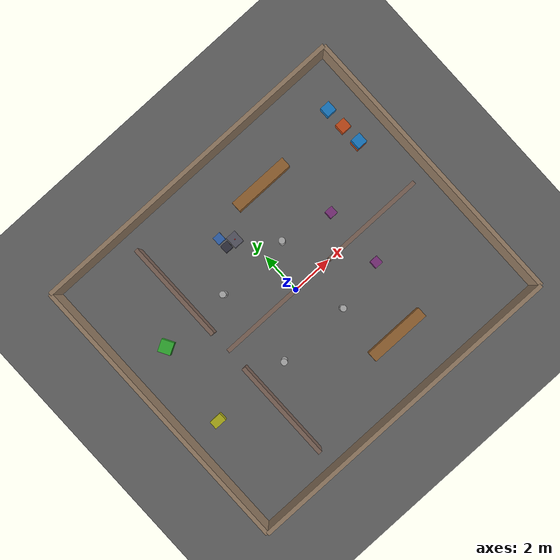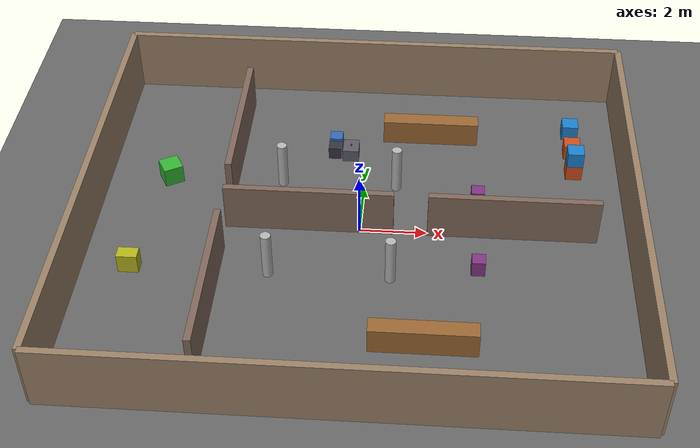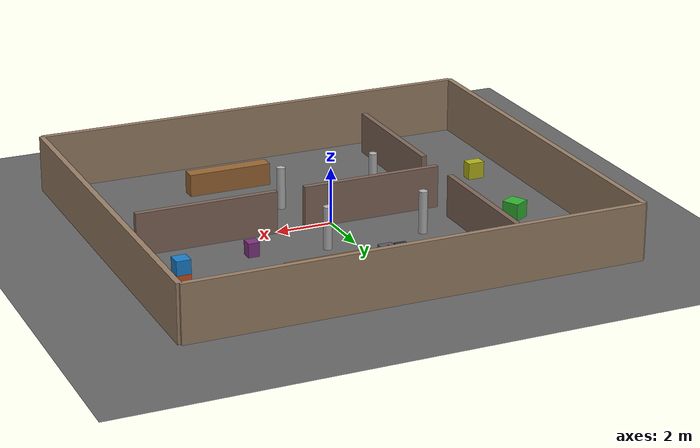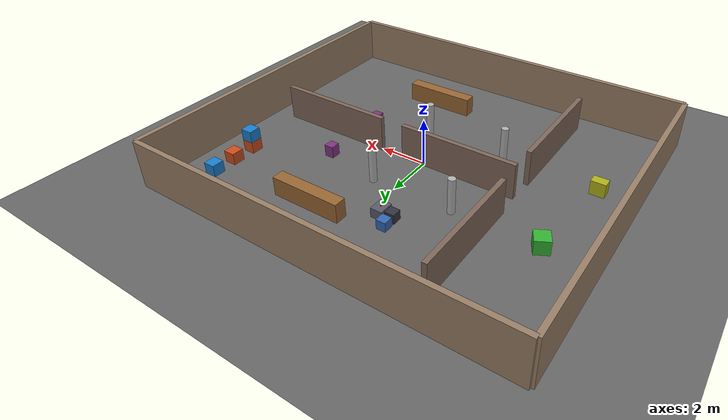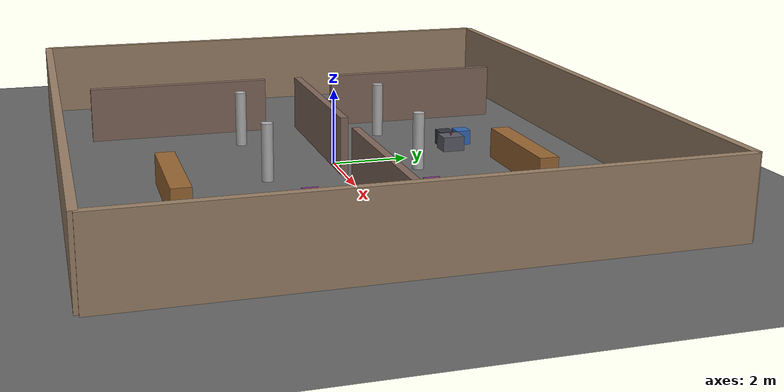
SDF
<?xml version="1.0" ?>
<sdf version="1.9">
  <world name="mecanum_warehouse">

    <physics name="1ms" type="ignored">
      <max_step_size>0.001</max_step_size>
      <real_time_factor>1.0</real_time_factor>
    </physics>

    <plugin filename="gz-sim-physics-system"
            name="gz::sim::systems::Physics"/>
    <plugin filename="gz-sim-sensors-system"
            name="gz::sim::systems::Sensors">
      <render_engine>ogre2</render_engine>
    </plugin>
    <plugin filename="gz-sim-scene-broadcaster-system"
            name="gz::sim::systems::SceneBroadcaster"/>
    <plugin filename="gz-sim-user-commands-system"
            name="gz::sim::systems::UserCommands"/>
    <plugin filename="gz-sim-imu-system"
            name="gz::sim::systems::Imu"/>

    <light name="sun" type="directional">
      <cast_shadows>true</cast_shadows>
      <pose>0 0 10 0 0 0</pose>
      <diffuse>0.8 0.8 0.8 1</diffuse>
      <specular>0.2 0.2 0.2 1</specular>
      <direction>-0.5 0.1 -0.9</direction>
    </light>

    <light name="overhead" type="directional">
      <pose>0 0 15 0 0 0</pose>
      <diffuse>0.6 0.6 0.6 1</diffuse>
      <specular>0.1 0.1 0.1 1</specular>
      <direction>0 0 -1</direction>
      <cast_shadows>false</cast_shadows>
    </light>

    <!-- Ground -->
    <model name="ground_plane">
      <static>true</static>
      <link name="link">
        <collision name="collision">
          <geometry><plane><normal>0 0 1</normal><size>30 30</size></plane></geometry>
        </collision>
        <visual name="visual">
          <geometry><plane><normal>0 0 1</normal><size>30 30</size></plane></geometry>
          <material>
            <ambient>0.4 0.4 0.4 1</ambient>
            <diffuse>0.4 0.4 0.4 1</diffuse>
          </material>
        </visual>
      </link>
    </model>

    <!-- FRANKA PANDA WORKSTATION TABLES & OBJECTS                -->

    <!-- Robot Support Pedestal (Robot sits on top at Z = 0.4) -->
    <model name="robot_pedestal">
      <static>true</static>
      <pose>-1.0 3.5 0.2 0 0 0</pose>
      <link name="link">
        <collision name="col">
          <geometry><box><size>0.4 0.4 0.4</size></box></geometry>
        </collision>
        <visual name="vis">
          <geometry><box><size>0.4 0.4 0.4</size></box></geometry>
          <material>
            <ambient>0.2 0.2 0.25 1</ambient>
            <diffuse>0.2 0.2 0.25 1</diffuse>
          </material>
        </visual>
      </link>
    </model>

    <!-- Pick Table in front of Panda arm -->
    <model name="pick_table">
      <static>true</static>
      <pose>-0.5 3.5 0.2 0 0 0</pose>
      <link name="link">
        <collision name="col">
          <geometry><box><size>0.5 0.6 0.4</size></box></geometry>
        </collision>
        <visual name="vis">
          <geometry><box><size>0.5 0.6 0.4</size></box></geometry>
          <material>
            <ambient>0.35 0.35 0.4 1</ambient>
            <diffuse>0.35 0.35 0.4 1</diffuse>
          </material>
        </visual>
      </link>
    </model>

    <!-- Target Red Cube to Pick Up -->
    <model name="target_block">
      <static>false</static>
      <pose>-0.5 3.5 0.425 0 0 0</pose>
      <link name="link">
        <inertial>
          <mass>0.05</mass>
          <inertia>
            <ixx>0.00001</ixx><ixy>0</ixy><ixz>0</ixz>
            <iyy>0.00001</iyy><iyz>0</iyz>
            <izz>0.00001</izz>
          </inertia>
        </inertial>
        <collision name="col">
          <geometry><box><size>0.04 0.04 0.05</size></box></geometry>
          <surface>
            <friction>
              <ode><mu>50.0</mu><mu2>50.0</mu2></ode>
            </friction>
          </surface>
        </collision>
        <visual name="vis">
          <geometry><box><size>0.04 0.04 0.05</size></box></geometry>
          <material>
            <ambient>0.9 0.1 0.1 1</ambient>
            <diffuse>0.9 0.1 0.1 1</diffuse>
          </material>
        </visual>
      </link>
    </model>

    <!-- Place Platform on the left (+Y side) -->
    <model name="place_table">
      <static>true</static>
      <pose>-1.0 4.0 0.2 0 0 0</pose>
      <link name="link">
        <collision name="col">
          <geometry><box><size>0.4 0.4 0.4</size></box></geometry>
        </collision>
        <visual name="vis">
          <geometry><box><size>0.4 0.4 0.4</size></box></geometry>
          <material>
            <ambient>0.2 0.4 0.7 1</ambient>
            <diffuse>0.2 0.4 0.7 1</diffuse>
          </material>
        </visual>
      </link>
    </model>

    <!-- WAREHOUSE ENVIRONMENT WALLS AND STRUCTURES               -->

    <!-- South wall -->
    <model name="south_wall"><static>true</static><pose>0 -7 1.0 0 0 0</pose>
      <link name="link">
        <collision name="col"><geometry><box><size>16 0.2 2.0</size></box></geometry></collision>
        <visual name="vis"><geometry><box><size>16 0.2 2.0</size></box></geometry>
        <material><ambient>0.6 0.5 0.4 1</ambient><diffuse>0.6 0.5 0.4 1</diffuse></material></visual>
      </link>
    </model>

    <!-- North wall -->
    <model name="north_wall"><static>true</static><pose>0 7 1.0 0 0 0</pose>
      <link name="link">
        <collision name="col"><geometry><box><size>16 0.2 2.0</size></box></geometry></collision>
        <visual name="vis"><geometry><box><size>16 0.2 2.0</size></box></geometry>
        <material><ambient>0.6 0.5 0.4 1</ambient><diffuse>0.6 0.5 0.4 1</diffuse></material></visual>
      </link>
    </model>

    <!-- West wall -->
    <model name="west_wall"><static>true</static><pose>-8 0 1.0 0 0 0</pose>
      <link name="link">
        <collision name="col"><geometry><box><size>0.2 14 2.0</size></box></geometry></collision>
        <visual name="vis"><geometry><box><size>0.2 14 2.0</size></box></geometry>
        <material><ambient>0.6 0.5 0.4 1</ambient><diffuse>0.6 0.5 0.4 1</diffuse></material></visual>
      </link>
    </model>

    <!-- East wall -->
    <model name="east_wall"><static>true</static><pose>8 0 1.0 0 0 0</pose>
      <link name="link">
        <collision name="col"><geometry><box><size>0.2 14 2.0</size></box></geometry></collision>
        <visual name="vis"><geometry><box><size>0.2 14 2.0</size></box></geometry>
        <material><ambient>0.6 0.5 0.4 1</ambient><diffuse>0.6 0.5 0.4 1</diffuse></material></visual>
      </link>
    </model>

    <!-- Divider west -->
    <model name="divider_west"><static>true</static><pose>-1.5 0 0.75 0 0 0</pose>
      <link name="link">
        <collision name="col"><geometry><box><size>5 0.2 1.5</size></box></geometry></collision>
        <visual name="vis"><geometry><box><size>5 0.2 1.5</size></box></geometry>
        <material><ambient>0.5 0.4 0.35 1</ambient><diffuse>0.5 0.4 0.35 1</diffuse></material></visual>
      </link>
    </model>

    <!-- Divider east -->
    <model name="divider_east"><static>true</static><pose>4.5 0 0.75 0 0 0</pose>
      <link name="link">
        <collision name="col"><geometry><box><size>5 0.2 1.5</size></box></geometry></collision>
        <visual name="vis"><geometry><box><size>5 0.2 1.5</size></box></geometry>
        <material><ambient>0.5 0.4 0.35 1</ambient><diffuse>0.5 0.4 0.35 1</diffuse></material></visual>
      </link>
    </model>

    <!-- Room wall north -->
    <model name="room_wall_north"><static>true</static><pose>-4 3.5 0.75 0 0 1.5708</pose>
      <link name="link">
        <collision name="col"><geometry><box><size>5 0.2 1.5</size></box></geometry></collision>
        <visual name="vis"><geometry><box><size>5 0.2 1.5</size></box></geometry>
        <material><ambient>0.5 0.4 0.35 1</ambient><diffuse>0.5 0.4 0.35 1</diffuse></material></visual>
      </link>
    </model>

    <!-- Room wall south -->
    <model name="room_wall_south"><static>true</static><pose>-4 -3.5 0.75 0 0 1.5708</pose>
      <link name="link">
        <collision name="col"><geometry><box><size>5 0.2 1.5</size></box></geometry></collision>
        <visual name="vis"><geometry><box><size>5 0.2 1.5</size></box></geometry>
        <material><ambient>0.5 0.4 0.35 1</ambient><diffuse>0.5 0.4 0.35 1</diffuse></material></visual>
      </link>
    </model>

    <!-- Shelves -->
    <model name="shelf_1"><static>true</static><pose>2.0 4.5 0.4 0 0 0</pose>
      <link name="link">
        <collision name="col"><geometry><box><size>3.0 0.5 0.8</size></box></geometry></collision>
        <visual name="vis"><geometry><box><size>3.0 0.5 0.8</size></box></geometry>
        <material><ambient>0.6 0.4 0.2 1</ambient><diffuse>0.6 0.4 0.2 1</diffuse></material></visual>
      </link>
    </model>

    <model name="shelf_2"><static>true</static><pose>2.0 -4.5 0.4 0 0 0</pose>
      <link name="link">
        <collision name="col"><geometry><box><size>3.0 0.5 0.8</size></box></geometry></collision>
        <visual name="vis"><geometry><box><size>3.0 0.5 0.8</size></box></geometry>
        <material><ambient>0.6 0.4 0.2 1</ambient><diffuse>0.6 0.4 0.2 1</diffuse></material></visual>
      </link>
    </model>

    <!-- Boxes -->
    <model name="box_1"><static>true</static><pose>6.5 3.0 0.25 0 0 0</pose>
      <link name="link">
        <collision name="col"><geometry><box><size>0.5 0.5 0.5</size></box></geometry></collision>
        <visual name="vis"><geometry><box><size>0.5 0.5 0.5</size></box></geometry>
        <material><ambient>0.8 0.3 0.1 1</ambient><diffuse>0.8 0.3 0.1 1</diffuse></material></visual>
      </link>
    </model>

    <model name="box_2"><static>true</static><pose>6.5 4.0 0.25 0 0 0</pose>
      <link name="link">
        <collision name="col"><geometry><box><size>0.5 0.5 0.5</size></box></geometry></collision>
        <visual name="vis"><geometry><box><size>0.5 0.5 0.5</size></box></geometry>
        <material><ambient>0.8 0.3 0.1 1</ambient><diffuse>0.8 0.3 0.1 1</diffuse></material></visual>
      </link>
    </model>

    <model name="box_3"><static>true</static><pose>6.5 5.0 0.25 0 0 0</pose>
      <link name="link">
        <collision name="col"><geometry><box><size>0.5 0.5 0.5</size></box></geometry></collision>
        <visual name="vis"><geometry><box><size>0.5 0.5 0.5</size></box></geometry>
        <material><ambient>0.1 0.5 0.8 1</ambient><diffuse>0.1 0.5 0.8 1</diffuse></material></visual>
      </link>
    </model>

    <model name="box_4"><static>true</static><pose>6.5 3.0 0.75 0 0 0</pose>
      <link name="link">
        <collision name="col"><geometry><box><size>0.5 0.5 0.5</size></box></geometry></collision>
        <visual name="vis"><geometry><box><size>0.5 0.5 0.5</size></box></geometry>
        <material><ambient>0.1 0.5 0.8 1</ambient><diffuse>0.1 0.5 0.8 1</diffuse></material></visual>
      </link>
    </model>

    <model name="box_5"><static>true</static><pose>-6.0 2.0 0.3 0 0 0.5</pose>
      <link name="link">
        <collision name="col"><geometry><box><size>0.6 0.6 0.6</size></box></geometry></collision>
        <visual name="vis"><geometry><box><size>0.6 0.6 0.6</size></box></geometry>
        <material><ambient>0.2 0.7 0.2 1</ambient><diffuse>0.2 0.7 0.2 1</diffuse></material></visual>
      </link>
    </model>

    <model name="box_6"><static>true</static><pose>-6.5 -2.0 0.3 0 0 0</pose>
      <link name="link">
        <collision name="col"><geometry><box><size>0.6 0.4 0.6</size></box></geometry></collision>
        <visual name="vis"><geometry><box><size>0.6 0.4 0.6</size></box></geometry>
        <material><ambient>0.7 0.7 0.1 1</ambient><diffuse>0.7 0.7 0.1 1</diffuse></material></visual>
      </link>
    </model>

    <!-- Pillars -->
    <model name="pillar_1"><static>true</static><pose>1.0 2.0 0.75 0 0 0</pose>
      <link name="link">
        <collision name="col"><geometry><cylinder><radius>0.15</radius><length>1.5</length></cylinder></geometry></collision>
        <visual name="vis"><geometry><cylinder><radius>0.15</radius><length>1.5</length></cylinder></geometry>
        <material><ambient>0.7 0.7 0.7 1</ambient><diffuse>0.7 0.7 0.7 1</diffuse></material></visual>
      </link>
    </model>

    <model name="pillar_2"><static>true</static><pose>1.0 -2.0 0.75 0 0 0</pose>
      <link name="link">
        <collision name="col"><geometry><cylinder><radius>0.15</radius><length>1.5</length></cylinder></geometry></collision>
        <visual name="vis"><geometry><cylinder><radius>0.15</radius><length>1.5</length></cylinder></geometry>
        <material><ambient>0.7 0.7 0.7 1</ambient><diffuse>0.7 0.7 0.7 1</diffuse></material></visual>
      </link>
    </model>

    <model name="pillar_3"><static>true</static><pose>-2.5 2.0 0.75 0 0 0</pose>
      <link name="link">
        <collision name="col"><geometry><cylinder><radius>0.15</radius><length>1.5</length></cylinder></geometry></collision>
        <visual name="vis"><geometry><cylinder><radius>0.15</radius><length>1.5</length></cylinder></geometry>
        <material><ambient>0.7 0.7 0.7 1</ambient><diffuse>0.7 0.7 0.7 1</diffuse></material></visual>
      </link>
    </model>

    <model name="pillar_4"><static>true</static><pose>-2.5 -2.0 0.75 0 0 0</pose>
      <link name="link">
        <collision name="col"><geometry><cylinder><radius>0.15</radius><length>1.5</length></cylinder></geometry></collision>
        <visual name="vis"><geometry><cylinder><radius>0.15</radius><length>1.5</length></cylinder></geometry>
        <material><ambient>0.7 0.7 0.7 1</ambient><diffuse>0.7 0.7 0.7 1</diffuse></material></visual>
      </link>
    </model>

    <!-- Corridor blocks -->
    <model name="corridor_block_1"><static>true</static><pose>3.5 1.5 0.25 0 0 0</pose>
      <link name="link">
        <collision name="col"><geometry><box><size>0.4 0.4 0.5</size></box></geometry></collision>
        <visual name="vis"><geometry><box><size>0.4 0.4 0.5</size></box></geometry>
        <material><ambient>0.5 0.2 0.5 1</ambient><diffuse>0.5 0.2 0.5 1</diffuse></material></visual>
      </link>
    </model>

    <model name="corridor_block_2"><static>true</static><pose>3.5 -1.5 0.25 0 0 0</pose>
      <link name="link">
        <collision name="col"><geometry><box><size>0.4 0.4 0.5</size></box></geometry></collision>
        <visual name="vis"><geometry><box><size>0.4 0.4 0.5</size></box></geometry>
        <material><ambient>0.5 0.2 0.5 1</ambient><diffuse>0.5 0.2 0.5 1</diffuse></material></visual>
      </link>
    </model>

  </world>
</sdf>
